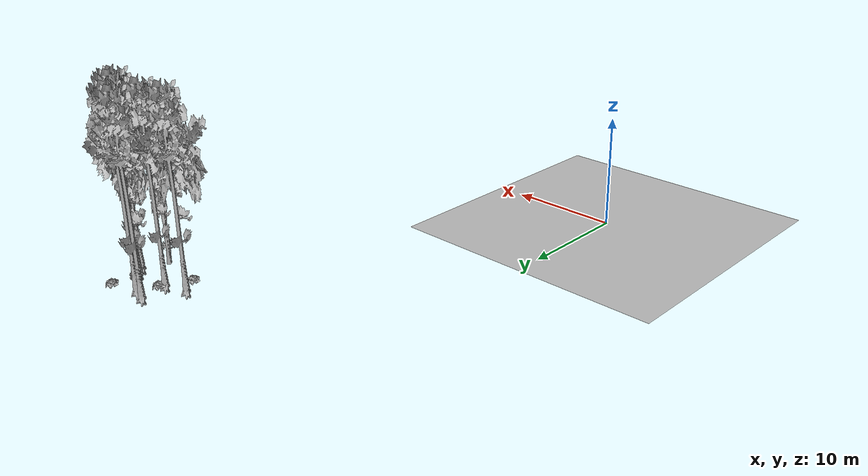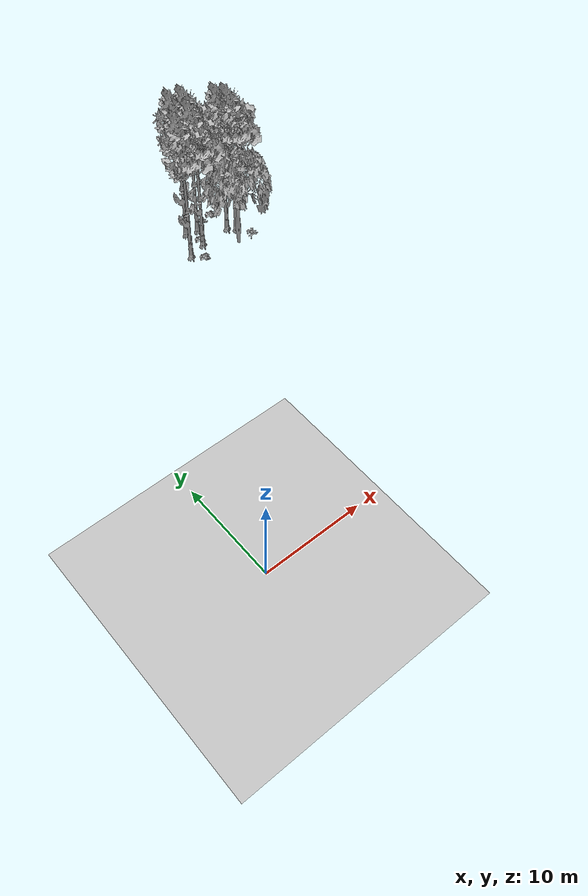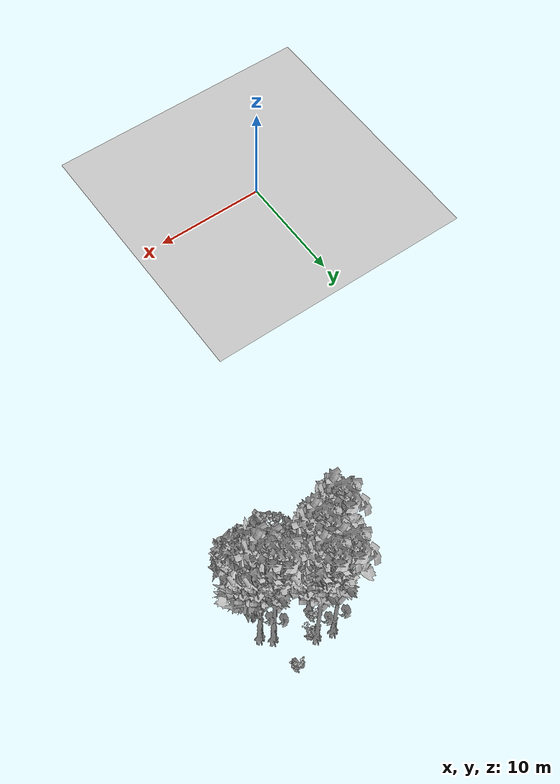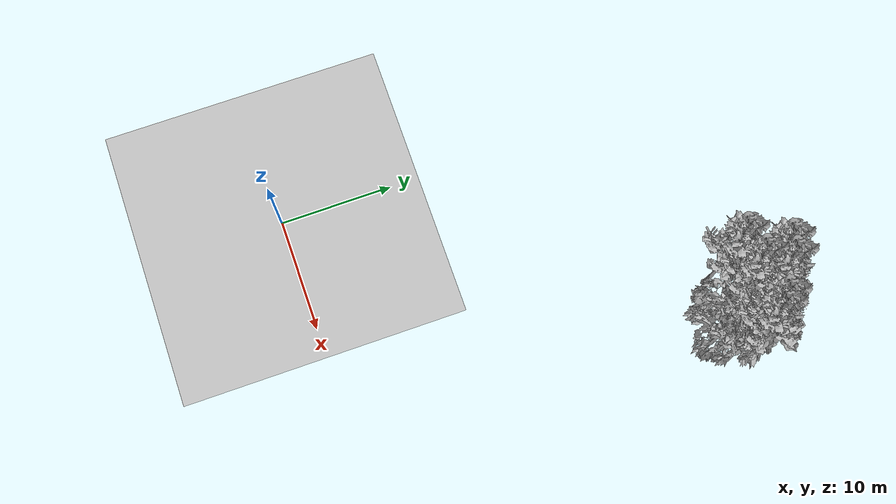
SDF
<sdf version="1.7">
 <world name="default">
  <model name="ground_plane">
   <static>1</static>
   <link name="link">
    <collision name="collision">
     <pose>-50 0 0 0 -0 0</pose>
     <geometry><plane><normal>0 0 1</normal><size>80 80</size></plane></geometry>
     <surface><contact><ode><min_depth>0.01</min_depth><max_vel>0</max_vel></ode></contact></surface>
    </collision>
    <visual name="grass">
     <cast_shadows>0</cast_shadows>
     <geometry>
      <mesh>
       <scale>0.46714285714285714 0.46714285714285714 0.1</scale>
       <uri>file://grass_plane/meshes/grass_plane.dae</uri>
      </mesh>
     </geometry>
    </visual>
   </link>
  </model>
  <model name="Tree 134">
   <static>1</static>
   <pose>17.14819861584487 32.91269562595254 0 1.57079 -0 0</pose>
   <link name="link">
    <collision name="collision">
     <geometry><mesh><scale>3.5 5 3.5</scale><uri>model://tree_9/meshes/tree_9.obj</uri></mesh></geometry>
    </collision>
    <visual name="visual">
     <geometry><mesh><scale>3.5 5 3.5</scale><uri>model://tree_9/meshes/tree_9.obj</uri></mesh></geometry>
    </visual>
   </link>
  </model>
  <model name="Tree 164">
   <static>1</static>
   <pose>19.158409816270627 33.57281898325935 0 1.57079 -0 0</pose>
   <link name="link">
    <collision name="collision">
     <geometry><mesh><scale>3.5 5 3.5</scale><uri>model://tree_9/meshes/tree_9.obj</uri></mesh></geometry>
    </collision>
    <visual name="visual">
     <geometry><mesh><scale>3.5 5 3.5</scale><uri>model://tree_9/meshes/tree_9.obj</uri></mesh></geometry>
    </visual>
   </link>
  </model>
  <model name="Tree 281">
   <static>1</static>
   <pose>22.592346871499196 33.91696774960559 0 1.57079 -0 0</pose>
   <link name="link">
    <collision name="collision">
     <geometry><mesh><scale>3.5 5 3.5</scale><uri>model://tree_9/meshes/tree_9.obj</uri></mesh></geometry>
    </collision>
    <visual name="visual">
     <geometry><mesh><scale>3.5 5 3.5</scale><uri>model://tree_9/meshes/tree_9.obj</uri></mesh></geometry>
    </visual>
   </link>
  </model>
  <model name="Tree 286">
   <static>1</static>
   <pose>23.319261593948113 33.26386286784458 0 1.57079 -0 0</pose>
   <link name="link">
    <collision name="collision">
     <geometry><mesh><scale>3.5 5 3.5</scale><uri>model://tree_9/meshes/tree_9.obj</uri></mesh></geometry>
    </collision>
    <visual name="visual">
     <geometry><mesh><scale>3.5 5 3.5</scale><uri>model://tree_9/meshes/tree_9.obj</uri></mesh></geometry>
    </visual>
   </link>
  </model>
  <model name="Tree 412">
   <static>1</static>
   <pose>18.720655781350807 35.89995371561588 0 1.57079 -0 0</pose>
   <link name="link">
    <collision name="collision">
     <geometry><mesh><scale>3.5 5 3.5</scale><uri>model://tree_9/meshes/tree_9.obj</uri></mesh></geometry>
    </collision>
    <visual name="visual">
     <geometry><mesh><scale>3.5 5 3.5</scale><uri>model://tree_9/meshes/tree_9.obj</uri></mesh></geometry>
    </visual>
   </link>
  </model>
  <model name="Tree 544">
   <static>1</static>
   <pose>19.994753917810762 35.60605664071366 0 1.57079 -0 0</pose>
   <link name="link">
    <collision name="collision">
     <geometry><mesh><scale>3.5 5 3.5</scale><uri>model://tree_9/meshes/tree_9.obj</uri></mesh></geometry>
    </collision>
    <visual name="visual">
     <geometry><mesh><scale>3.5 5 3.5</scale><uri>model://tree_9/meshes/tree_9.obj</uri></mesh></geometry>
    </visual>
   </link>
  </model>
  <model name="Tree 624">
   <static>1</static>
   <pose>22.07268322440583 31.338037288183926 0 1.57079 -0 0</pose>
   <link name="link">
    <collision name="collision">
     <geometry><mesh><scale>3.5 5 3.5</scale><uri>model://tree_2/meshes/tree_2.obj</uri></mesh></geometry>
    </collision>
    <visual name="visual">
     <geometry><mesh><scale>3.5 5 3.5</scale><uri>model://tree_2/meshes/tree_2.obj</uri></mesh></geometry>
    </visual>
   </link>
  </model>
  <model name="Bush 63">
   <static>1</static>
   <pose>17.976740216672553 31.669574505228454 0 1.57079 -0 0</pose>
   <link name="link">
    <collision name="collision">
     <geometry><mesh><scale>2 2 2</scale><uri>model://bush_2/meshes/bush_2.obj</uri></mesh></geometry>
     <surface><contact><collide_without_contact>false</collide_without_contact></contact></surface>
    </collision>
    <visual name="visual">
     <geometry><mesh><scale>2 2 2</scale><uri>model://bush_2/meshes/bush_2.obj</uri></mesh></geometry>
    </visual>
   </link>
  </model>
  <model name="Bush 65">
   <static>1</static>
   <pose>20.395299847477915 35.409743275631044 0 1.57079 -0 0</pose>
   <link name="link">
    <collision name="collision">
     <geometry><mesh><scale>2 2 2</scale><uri>model://bush_5/meshes/bush_5.obj</uri></mesh></geometry>
     <surface><contact><collide_without_contact>false</collide_without_contact></contact></surface>
    </collision>
    <visual name="visual">
     <geometry><mesh><scale>2 2 2</scale><uri>model://bush_5/meshes/bush_5.obj</uri></mesh></geometry>
    </visual>
   </link>
  </model>
  <model name="Bush 129">
   <static>1</static>
   <pose>22.251590529433187 36.40101426485248 0 1.57079 -0 0</pose>
   <link name="link">
    <collision name="collision">
     <geometry><mesh><scale>2 2 2</scale><uri>model://bush_2/meshes/bush_2.obj</uri></mesh></geometry>
     <surface><contact><collide_without_contact>false</collide_without_contact></contact></surface>
    </collision>
    <visual name="visual">
     <geometry><mesh><scale>2 2 2</scale><uri>model://bush_2/meshes/bush_2.obj</uri></mesh></geometry>
    </visual>
   </link>
  </model>
  <model name="Bush 191">
   <static>1</static>
   <pose>23.37423494516034 30.77652373500098 0 1.57079 -0 0</pose>
   <link name="link">
    <collision name="collision">
     <geometry><mesh><scale>2 2 2</scale><uri>model://bush_5/meshes/bush_5.obj</uri></mesh></geometry>
     <surface><contact><collide_without_contact>false</collide_without_contact></contact></surface>
    </collision>
    <visual name="visual">
     <geometry><mesh><scale>2 2 2</scale><uri>model://bush_5/meshes/bush_5.obj</uri></mesh></geometry>
    </visual>
   </link>
  </model>
  <model name="Bush 419">
   <static>1</static>
   <pose>19.163028659402066 34.065073611000926 0 1.57079 -0 0</pose>
   <link name="link">
    <collision name="collision">
     <geometry><mesh><scale>2 2 2</scale><uri>model://bush_2/meshes/bush_2.obj</uri></mesh></geometry>
     <surface><contact><collide_without_contact>false</collide_without_contact></contact></surface>
    </collision>
    <visual name="visual">
     <geometry><mesh><scale>2 2 2</scale><uri>model://bush_2/meshes/bush_2.obj</uri></mesh></geometry>
    </visual>
   </link>
  </model>
 </world>
</sdf>
